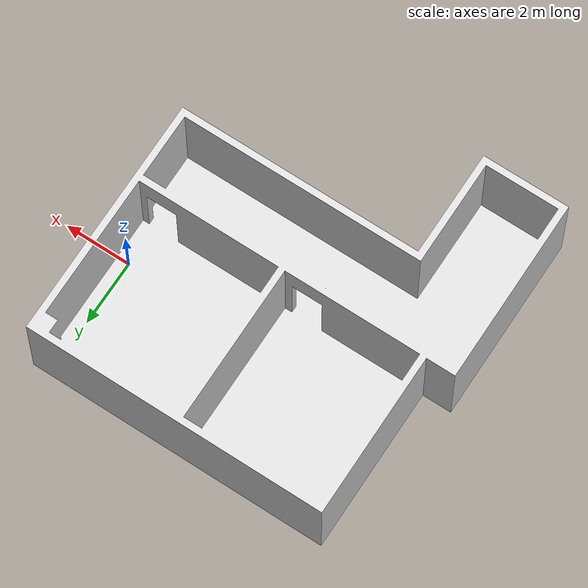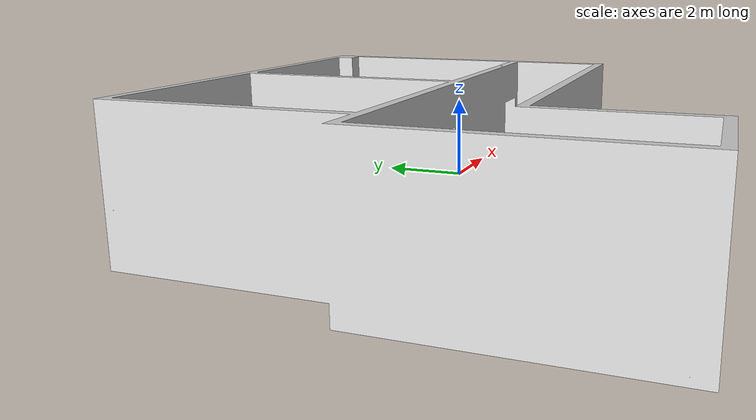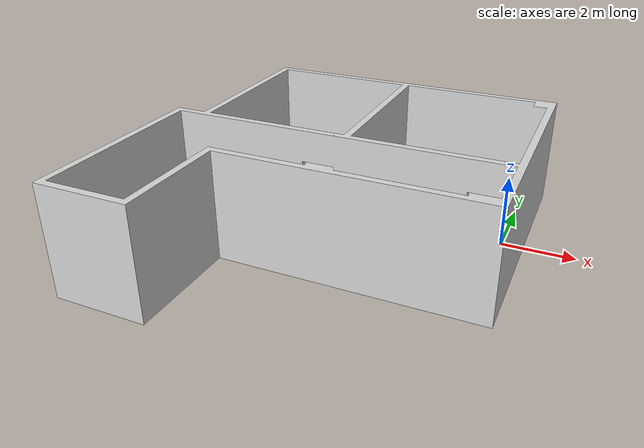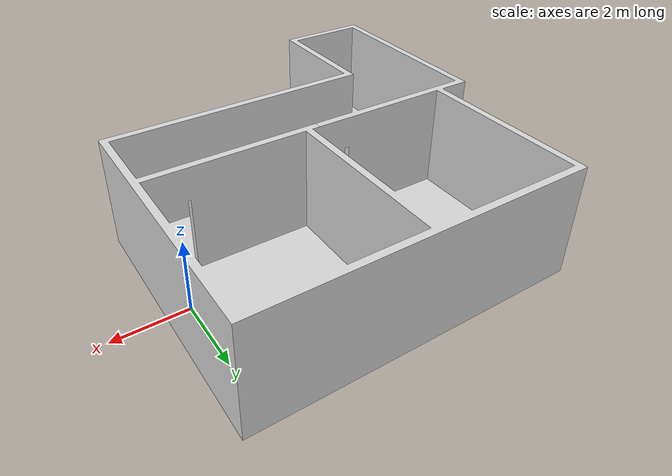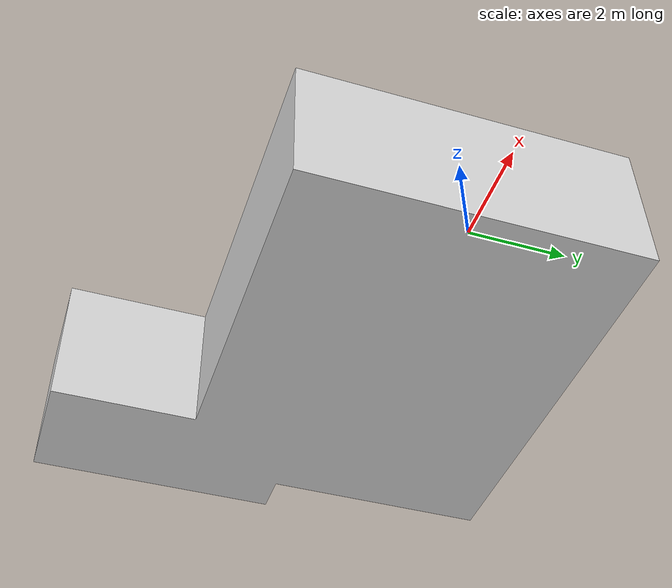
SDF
<?xml version="1.0" ?>
<sdf version="1.6">
  <model name="gazebo_flat">
    <static>true</static>
    <link name="link">
      <collision name="collision">
        <geometry>
          <mesh>
            <uri>model://INU_9_211/meshes/INU_9_211.dae</uri>
            <scale>0.001 0.001 0.001</scale>
          </mesh>
        </geometry>
      </collision>
      <visual name="visual">
        <geometry>
          <mesh>
            <uri>model://INU_9_211/meshes/INU_9_211.dae</uri>
            <scale>0.001 0.001 0.001</scale>
          </mesh>
        </geometry>
      </visual>
    </link>
  </model>
</sdf>
